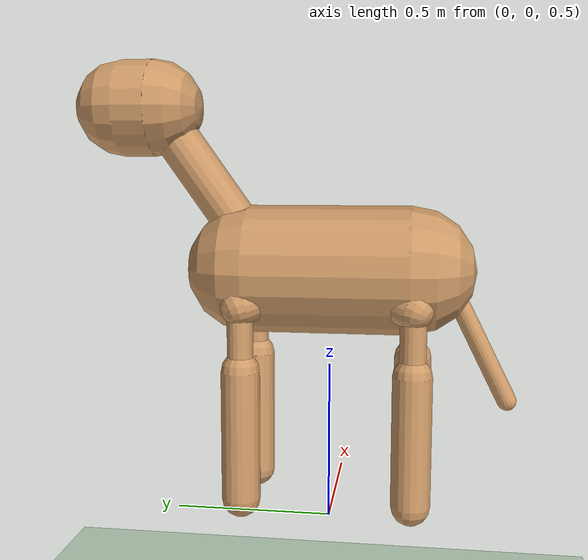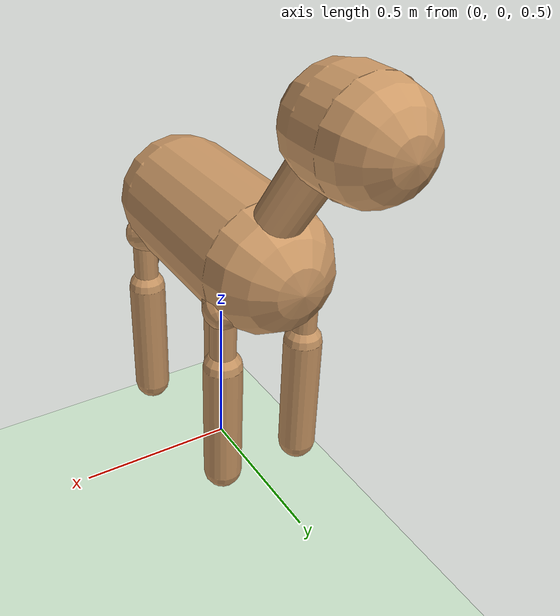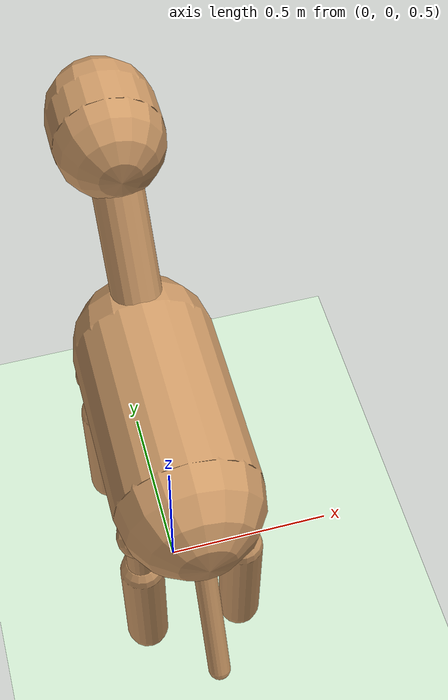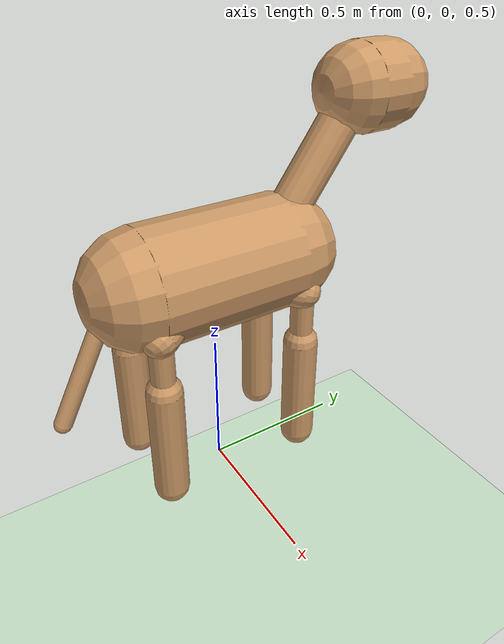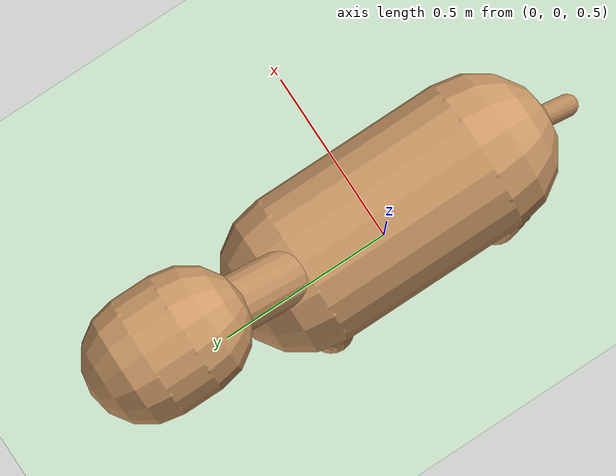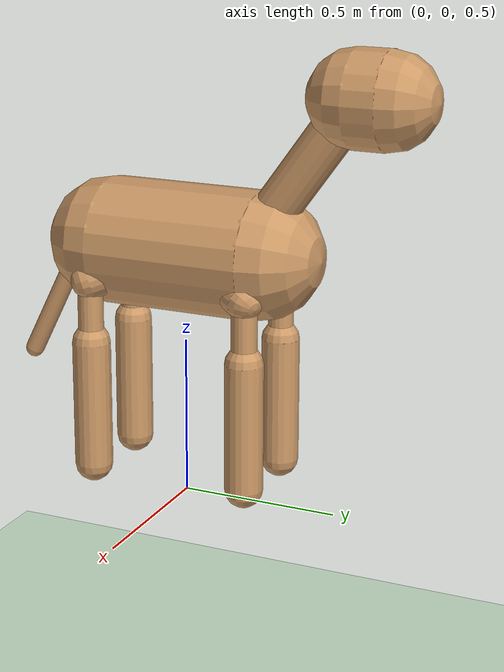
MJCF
<mujoco model="ant">
  <compiler inertiafromgeom="true" angle="degree" coordinate="local" />

  <option timestep="0.02" integrator="RK4" />

  <custom>
    <numeric name="init_qpos" data="0.0 0.0 0.55 1.0 0.0 0.0 0.0 0.0 1.0 0.0 -1.0 0.0 -1.0 0.0 1.0" />
  </custom>

  <default>
    <joint limited="true" armature="1" damping="1" />
    <geom condim="3" conaffinity="0" margin="0.01" friction="1 0.5 0.5" solref=".02 1" solimp=".8 .8 .01" rgba="0.8 0.6 0.4 1" density="5.0" />
  </default>

  <asset>
    <texture type="skybox" builtin="gradient" width="100" height="100" rgb1="1 1 1" rgb2="0 0 0" />
    <texture name="texgeom" type="cube" builtin="flat" mark="cross" width="127" height="1278" rgb1="0.8 0.6 0.4" rgb2="0.8 0.6 0.4" markrgb="1 1 1" random="0.01" />
    <texture name="texplane" type="2d" builtin="checker" rgb1="0 0 0" rgb2="0.8 0.8 0.8" width="100" height="100" />
    <material name='MatPlane' texture="texplane" shininess="1" texrepeat="60 60" specular="1"  reflectance="0.5" />
    <material name='geom' texture="texgeom" texuniform="true" />
  </asset>

  <!-- World and Body /-->
  <worldbody>
    <light directional="true" cutoff="100" exponent="1" diffuse="1 1 1" specular=".1 .1 .1" pos="0 0 1.3" dir="-0 0 -1.3" />

    <!-- World: Plane /-->
    <geom name='floor' material="MatPlane" pos='0 0 0' size='40 40 40' type='plane' conaffinity='1' rgba='0.8 0.9 0.8 1' condim='3' />

    <!-- Body: Animal called "torso"/-->
    <body name="torso" pos="0 0 1.3">

      <!-- Middle part of the body /-->
      <geom name="torso_body_geom" type="capsule" size="0.2" fromto=".0 -.25 .0 .0 .25 .0" pos=".0 .0 .0" /> <!-- Body /-->
      <body name="torso_neck_geom" pos=".0 .3 .15">
        <joint name="body_neck_joint" type="hinge" pos="0.0 0.0 0.0" axis="1 1 1" range="-15 15" />
        <geom name="neck_geom" type="capsule" size=".07" fromto=".0 .0 .0 .0 .25 .35" /> <!-- Neck /-->
        <body pos=".0 .25 .35">
          <geom name="torso_head_direction" type="capsule" size="0.15" fromto=".0 .0 .0 .0 .1 .0" pos=".0 .0 .0" density="0.1"/> <!-- Head /-->
        </body>
      </body>
      <body name="torso_tail_geom" pos=".0 -.4 -.1">
        <joint name="body_tail_joint" type="hinge" pos="0.0 0.0 0.0" axis="1 1 0" range="-90 90" />
        <geom name="tail_geom" type="capsule" size="0.03" fromto=".0 .0 .0 .0 -.15 -.3" pos=".0 .0 .0" /> <!-- Tail /-->
      </body>

      <!-- Unknown??? /-->
      <!-- joint name="root" type="free" limited="false" pos="0 0 0" axis="0 0 1" margin="0.01" armature="0" damping="0" /-->
      <!-- Unknown??? /-->

      <body name="front_right_leg" pos=".0 .0 .0">
        <geom name="aux_1_geom" type="capsule" size="0.06" fromto=".0 .0 .0 .14 .26 -.1" />
        <body name="aux_1" pos=".14 .26 -.1">
          <joint name="hip_1" type="hinge" pos=".0 .0 .0" axis="1 1 1" range="-90 90" />
          <geom name="front_right_leg_geom" type="capsule" size="0.04" fromto=".0 .0 .0 .0 .0 -.2" />
          <body pos=".0 .0 -.2">
            <joint name="ankle_1" type="hinge" pos=".0 .0 .0" axis="1 1 0" range="-100 100" />
            <geom name="front_right_ankle_geom" type="capsule" size="0.06" fromto=".0 .0 .0 .0 .0 -0.4" />
          </body>
        </body>
      </body>

      <body name="front_left_leg" pos=".0 .0 .0">
        <geom name="aux_2_geom" type="capsule" size="0.06" fromto=".0 .0 .0 -.14 .26 -.1" />
        <body name="aux_2" pos="-.14 .26 -.1">
          <joint name="hip_2" type="hinge" pos=".0 .0 .0" axis="1 1 1" range="-90 90" />
          <geom name="front_left_leg_geom" type="capsule" size="0.04" fromto=".0 .0 .0 .0 .0 -.2" />
          <body pos=".0 .0 -.2">
            <joint name="ankle_2" type="hinge" pos=".0 .0 .0" axis="1 1 0" range="-100 100" />
            <geom name="front_left_ankle_geom" type="capsule" size="0.06" fromto=".0 .0 .0 .0 .0 -0.4" />
          </body>
        </body>
      </body>

      <body name="back_right_leg" pos=".0 .0 .0">
        <geom name="aux_3_geom" type="capsule" size="0.06" fromto=".0 .0 .0 .14 -.26 -.1" />
        <body name="aux_3" pos=".14 -.26 -.1">
          <joint name="hip_3" type="hinge" pos=".0 .0 .0" axis="1 1 1" range="-90 90" />
          <geom name="back_right_leg_geom" type="capsule" size="0.04" fromto=".0 .0 .0 .0 .0 -.2" />
          <body pos=".0 .0 -.2">
            <joint name="ankle_3" type="hinge" pos=".0 .0 .0" axis="1 1 0" range="-100 100" />
            <geom name="back_right_ankle_geom" type="capsule" size="0.06" fromto=".0 .0 .0 .0 .0 -0.4" />
          </body>
        </body>
      </body>

      <body name="back_left_leg" pos=".0 .0 .0">
        <geom name="aux_4_geom" type="capsule" size="0.06" fromto=".0 .0 .0 -.14 -.26 -.1" />
        <body name="aux_4" pos="-.14 -.26 -.1">
          <joint name="hip_4" type="hinge" pos=".0 .0 .0" axis="1 1 1" range="-90 90" />
          <geom name="back_left_leg_geom" type="capsule" size="0.04" fromto=".0 .0 .0 .0 .0 -.2" />
          <body pos=".0 .0 -.2">
            <joint name="ankle_4" type="hinge" pos=".0 .0 .0" axis="1 1 0" range="-100 100" />
            <geom name="back_left_ankle_geom" type="capsule" size="0.06" fromto=".0 .0 .0 .0 .0 -0.4" />
          </body>
        </body>
      </body>

    </body> <!-- of "torso"/-->
  </worldbody>

  <actuator>
    <motor joint="hip_4"   ctrlrange="-150.0 150.0" ctrllimited="true" />
    <motor joint="ankle_4" ctrlrange="-150.0 150.0" ctrllimited="true" />
    <motor joint="hip_1"   ctrlrange="-150.0 150.0" ctrllimited="true" />
    <motor joint="ankle_1" ctrlrange="-150.0 150.0" ctrllimited="true" />
    <motor joint="hip_2"   ctrlrange="-150.0 150.0" ctrllimited="true" />
    <motor joint="ankle_2" ctrlrange="-150.0 150.0" ctrllimited="true" />
    <motor joint="hip_3"   ctrlrange="-150.0 150.0" ctrllimited="true" />
    <motor joint="ankle_3" ctrlrange="-150.0 150.0" ctrllimited="true" />
  </actuator>
</mujoco>
